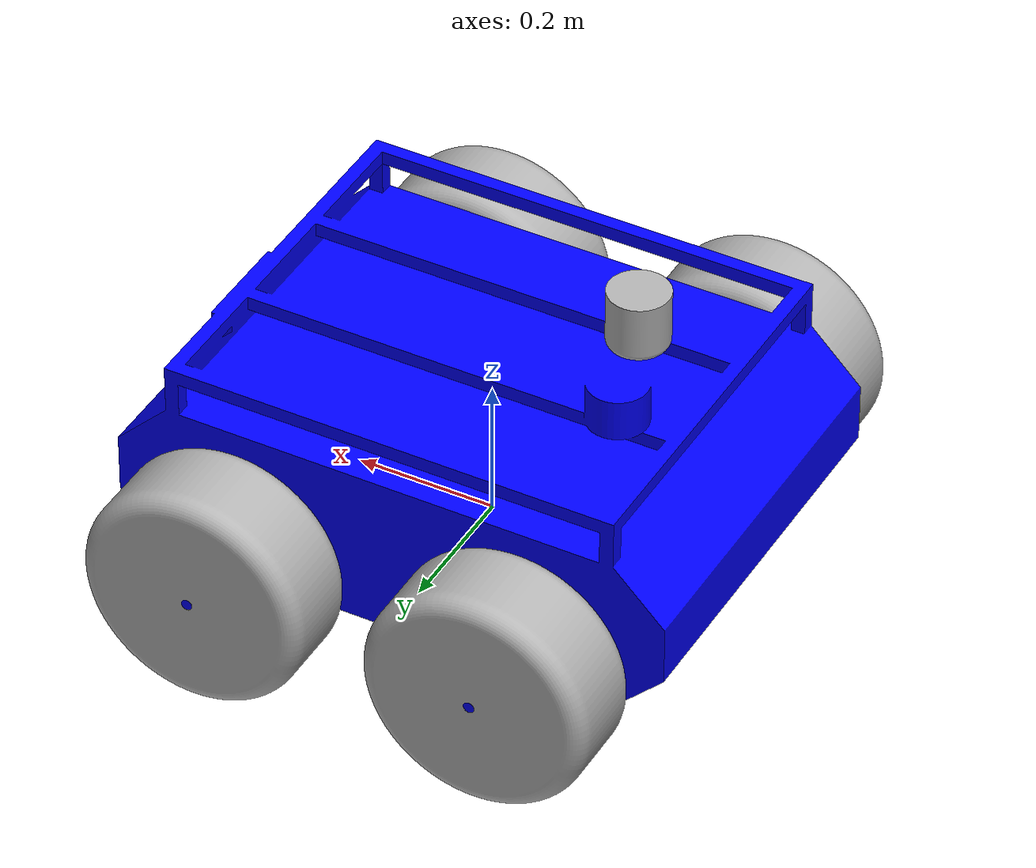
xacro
<?xml version="1.0" ?>
<robot name="minimal_robot" xmlns:xacro="http://www.ros.org/wiki/xacro">

<xacro:include filename="$(find rebob_sim_description)/urdf/materials.xacro" />
<xacro:include filename="$(find rebob_sim_description)/urdf/velodyne.xacro" />
<xacro:include filename="$(find rebob_sim_description)/urdf/imu.xacro" />
<xacro:include filename="$(find rebob_sim_description)/urdf/cameras.xacro" />
<xacro:include filename="$(find rebob_sim_description)/urdf/ros2_control.xacro" />
<!-- file://$(find rebob_sim_description)/ -->
<!-- package://rebob_sim_description -->

  <link name="base_link">
    <inertial>
      <origin xyz="0.014434200548700926 -3.118137948073763e-16 0.05508555808717281" rpy="0 0 0"/>
      <mass value="234.46307804463302"/>
      <inertia ixx="8.910108" iyy="21.103199" izz="26.731133" ixy="-0.0" iyz="-0.0" ixz="-0.581566"/>
    </inertial>
    <visual>
      <origin xyz="0 0 0" rpy="0 0 0"/>
      <geometry>
        <mesh filename="file://$(find rebob_sim_description)/meshes/base_link.stl" scale="0.001 0.001 0.001"/>
      </geometry>
      <material name="blue"/>
    </visual>
    <collision>
      <origin xyz="0 0 0" rpy="0 0 0"/>
      <geometry>
        <mesh filename="file://$(find rebob_sim_description)/meshes/base_link.stl" scale="0.001 0.001 0.001"/>
      </geometry>
    </collision>
  </link>

<link name="wheel_rr">
  <inertial>
    <origin xyz="0.069 5.000000019295125e-07 1.3877787807814457e-17" rpy="0 0 1.57"/>
    <mass value="88.4730552536459"/>
    <inertia ixx="1.158616" iyy="0.714609" izz="0.714609" ixy="0.0" iyz="0.0" ixz="-0.0"/>
  </inertial>
  <visual>
    <origin xyz="0 0 0" rpy="0 0 -1.57"/>
    <geometry>
      <mesh filename="file://$(find rebob_sim_description)/meshes/wheel.stl" scale="0.001 0.001 0.001"/>
    </geometry>
    <material name="silver"/>
  </visual>
  <collision>
    <origin xyz="-0.06 0 0" rpy="0 1.57 0"/>
    <geometry>
      <cylinder length="0.12" radius="0.163"/>
    </geometry>
  </collision>
</link>

<link name="wheel_fr">
  <inertial>
    <origin xyz="0.06900000000000006 5.000000017629791e-07 4.163336342344337e-17" rpy="0 0 1.57"/>
    <mass value="88.47305525364591"/>
    <inertia ixx="1.158616" iyy="0.714609" izz="0.714609" ixy="-0.0" iyz="-0.0" ixz="0.0"/>
  </inertial>
  <visual>
    <origin xyz="0 0 0" rpy="0 0 -1.57"/>
    <geometry>
      <mesh filename="file://$(find rebob_sim_description)/meshes/wheel.stl" scale="0.001 0.001 0.001"/>
    </geometry>
    <material name="silver"/>
  </visual>
  <collision>
    <origin xyz="-0.06 0 0" rpy="0 1.57 0"/>
    <geometry>
      <cylinder length="0.12" radius="0.163"/>
    </geometry>
  </collision>
</link>

<link name="wheel_rl">
  <inertial>
    <origin xyz="-0.0689999999999999 4.999999977106651e-07 -5.551115123125783e-17" rpy="0 0 1.57"/>
    <mass value="88.47305525364591"/>
    <inertia ixx="1.158616" iyy="0.714609" izz="0.714609" ixy="0.0" iyz="0.0" ixz="-0.0"/>
  </inertial>
  <visual>
    <origin xyz="0 0 0" rpy="0 0 1.57"/>
    <geometry>
      <mesh filename="file://$(find rebob_sim_description)/meshes/wheel.stl" scale="0.001 0.001 0.001"/>
    </geometry>
    <material name="silver"/>
  </visual>
  <collision>
   <origin xyz="-0.06 0 0" rpy="0 1.57 0"/>
    <geometry>
      <cylinder length="0.12" radius="0.163"/>
    </geometry>
  </collision>
</link>

<link name="wheel_fl">
  <inertial>
    <origin xyz="-0.0689999999999999 4.999999975996428e-07 9.71445146547012e-17" rpy="0 0 1.57"/>
    <mass value="88.47305525364588"/>
    <inertia ixx="1.158616" iyy="0.714609" izz="0.714609" ixy="-0.0" iyz="-0.0" ixz="0.0"/>
  </inertial>
  <visual>
    <origin xyz="0 0 0" rpy="0 0 1.57"/>
    <geometry>
      <mesh filename="file://$(find rebob_sim_description)/meshes/wheel.stl" scale="0.001 0.001 0.001"/>
    </geometry>
    <material name="silver"/>
  </visual>
  <collision>
    <origin xyz="-0.06 0 0" rpy="0 1.57 0"/>
    <geometry>
      <cylinder length="0.12" radius="0.163"/>
    </geometry>
  </collision>
</link>

<link name="velodyne">
  <inertial>
    <origin xyz="4.163336342344337e-17 4.999999999588667e-07 0.042556105337969774" rpy="0 0 0"/>
    <mass value="3.734417588986906"/>
    <inertia ixx="0.003845" iyy="0.003845" izz="0.003365" ixy="0.0" iyz="0.0" ixz="0.0"/>
  </inertial>
  <visual>
    <origin xyz="0 0 0" rpy="0 0 0"/>
    <geometry>
      <mesh filename="file://$(find rebob_sim_description)/meshes/velodyne.stl" scale="0.001 0.001 0.001"/>
    </geometry>
    <material name="silver"/>
  </visual>
  <collision>
    <origin xyz="0 0 0" rpy="0 0 0"/>
    <geometry>
      <mesh filename="file://$(find rebob_sim_description)/meshes/velodyne.stl" scale="0.001 0.001 0.001"/>
    </geometry>
  </collision>
</link>

<joint name="wheel_rr_joint" type="continuous">
  <origin xyz="-0.20582 -0.440018 0.072471" rpy="0 0 -1.57"/>
  <parent link="base_link"/>
  <child link="wheel_rr"/>
  <axis xyz="-1.0 0.0 0.0"/>
</joint>

<joint name="wheel_fr_joint" type="continuous">
  <origin xyz="0.209915 -0.440018 0.072471" rpy="0 0 -1.57"/>
  <parent link="base_link"/>
  <child link="wheel_fr"/>
  <axis xyz="-1.0 0.0 0.0"/>
</joint>

<joint name="wheel_rl_joint" type="continuous">
  <origin xyz="-0.20582 0.439276 0.072471" rpy="0 0 -1.57"/>
  <parent link="base_link"/>
  <child link="wheel_rl"/>
  <axis xyz="-1.0 0.0 0.0"/>
</joint>

<joint name="wheel_fl_joint" type="continuous">
  <origin xyz="0.209915 0.439276 0.072471" rpy="0 0 -1.57"/>
  <parent link="base_link"/>
  <child link="wheel_fl"/>
  <axis xyz="-1.0 0.0 0.0"/>
</joint>

<joint name="velodyne_joint" type="fixed">
    <origin xyz="-0.26 0.09 0.442" rpy="0 0 1.57"/>
    <parent link="base_link"/>
    <child link="velodyne"/>
    <axis xyz="0.0 0.0 1.0"/>
</joint>

<!-- continuous -->
</robot>

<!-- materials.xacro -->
<robot name="minimal_robot" xmlns:xacro="http://www.ros.org/wiki/xacro" >

<material name="silver">
  <color rgba="0.700 0.700 0.700 1.000"/>
</material>

<material name="blue">
    <color rgba="0.000 0.000 1.000 1.000"/>
</material>

</robot>

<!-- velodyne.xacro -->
<robot xmlns:xacro="http://www.ros.org/wiki/xacro" >

    <joint name="laser_joint" type="fixed">
        <parent link="velodyne"/>
        <child link="laser_frame"/>
        <origin xyz="0 0 0" rpy="0 0 0"/>
    </joint>

    <link name="laser_frame"/>

    <gazebo reference="laser_frame">
        <material>Gazebo/Black</material>

        <sensor name="laser" type="gpu_lidar">
            <pose> 0 0 0 0 0 0 </pose>
            <visualize>false</visualize>
            <update_rate>10</update_rate>
            <lidar>
                <scan>
                    <horizontal>
                        <samples>360</samples>
                        <min_angle>-3.14</min_angle>
                        <max_angle>3.14</max_angle>
                    </horizontal>
                    <vertical>
                        <samples>32</samples>
                        <resolution>1</resolution>
                        <min_angle>-0.54</min_angle>
                        <max_angle>0.18</max_angle>
                    </vertical>
                </scan>
                <range>
                    <min>0.3</min>
                    <max>100.0</max>
                </range>
                <!-- noise breaks shit up -->
            </lidar>
            <topic>velodyne_scan</topic>
            <gz_frame_id>laser_frame</gz_frame_id>
            <visualize>true</visualize>
        </sensor>
    </gazebo>

</robot>

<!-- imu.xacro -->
<robot xmlns:xacro="http://www.ros.org/wiki/xacro" >

    <joint name="imu_joint" type="fixed">
        <parent link="base_link"/>
        <child link="imu_link"/>
        <origin xyz="-0.18 0.1115 0.352" rpy="0 0 3.1415"/>
    </joint>

    <link name="imu_link"/>

    <gazebo reference="imu_link">
        <material>Gazebo/Black</material>

        <sensor name="imu" type="imu">
            <always_on>1</always_on>
            <update_rate>20</update_rate>
            <visualize>true</visualize>
            <topic>imu</topic>
        </sensor>
    </gazebo>

</robot>

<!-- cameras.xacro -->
<robot xmlns:xacro="http://www.ros.org/wiki/xacro" >

    <joint name="front_03r_joint" type="fixed">
        <origin xyz="0.34 0.00 0.3" rpy="1.57 3.14 1.57"/>
        <parent link="base_link"/>
        <child link="front_camera_frame"/>
    </joint>

    <link name="front_camera_frame"/>

    <gazebo reference="front_camera_frame">
        <material>Gazebo/Black</material>

        <sensor name="camera_front" type="camera">
            <pose> 0 0 0 1.57 -1.57 0 </pose>
            <visualize>false</visualize>
            <camera>
                <camera_info_topic>camera_front/camera_info</camera_info_topic>
                <horizontal_fov>1.089</horizontal_fov>
                <image>
                    <format>R8G8B8</format>
                    <width>640</width>
                    <height>480</height>
                </image>
                <clip>
                    <near>0.05</near>
                    <far>30.0</far>
                </clip>
                <depth_camera>
                    <output>camera_front/points</output>
                </depth_camera>
            </camera>
            <topic>camera_front/image_raw</topic>
            <gz_frame_id>front_camera_frame</gz_frame_id>
            <update_rate>30</update_rate>
        </sensor>
    </gazebo>

    <joint name="rear_03r_joint" type="fixed">
        <origin xyz="-0.34 0.0 0.3" rpy="1.57 3.14 -1.57"/>
        <parent link="base_link"/>
        <child link="rear_camera_frame"/>
    </joint>

    <link name="rear_camera_frame"/>

    <gazebo reference="rear_camera_frame">
        <material>Gazebo/Black</material>

        <sensor name="camera_rear" type="camera">
            <pose> 0 0 0 1.57 -1.57 0 </pose>
            <visualize>false</visualize>
            <camera>
                <camera_info_topic>camera_rear/camera_info</camera_info_topic>
                <horizontal_fov>1.089</horizontal_fov>
                <image>
                    <format>R8G8B8</format>
                    <width>640</width>
                    <height>480</height>
                </image>
                <clip>
                    <near>0.05</near>
                    <far>30.0</far>
                </clip>
            </camera>
            <topic>camera_rear/image_raw</topic>
            <gz_frame_id>rear_camera_frame</gz_frame_id>
            <update_rate>30</update_rate>
        </sensor>
    </gazebo>

    <!-- test 3d -->
    <joint name="front_3d_joint" type="fixed">
        <origin xyz="0.34 0.03 0.3" rpy="0 0 0"/>
        <parent link="base_link"/>
        <child link="front_depth_frame"/>
    </joint>

    <link name="front_depth_frame"/>

    <gazebo reference="front_depth_frame">
        <material>Gazebo/Black</material>

        <sensor name="depth_front" type="depth_camera">
            <always_on>1</always_on>
            <update_rate>20</update_rate>
            <visualize>0</visualize>
            <topic>depth_front</topic>
            <pose>0 0 0 0 0 0</pose>
            <camera name="depth">
                <horizontal_fov>1.83</horizontal_fov>
                <vertical_fov>1.36</vertical_fov>
                <image>
                    <width>224</width>
                    <height>172</height>
                    <format>RGB_INT8</format>
                </image>
                <clip>
                    <near>0.1</near>
                    <far>4</far>
                </clip>
                <noise>
                    <type>gaussian</type>
                    <mean>0</mean>
                    <stddev>0.001</stddev>
                </noise>
            </camera>
            <gz_frame_id>front_depth_frame</gz_frame_id>
        </sensor>
    </gazebo>

    <joint name="rear_3d_joint" type="fixed">
        <origin xyz="-0.34 -0.03 0.3" rpy="0 0 -3.14"/>
        <parent link="base_link"/>
        <child link="rear_depth_frame"/>
    </joint>

    <link name="rear_depth_frame"/>

    <gazebo reference="rear_depth_frame">
        <material>Gazebo/Black</material>

        <sensor name="depth_rear" type="depth_camera">
            <always_on>1</always_on>
            <update_rate>20</update_rate>
            <visualize>0</visualize>
            <topic>depth_rear</topic>
            <pose>0 0 0 0 0 0</pose>
            <camera name="depth">
                <horizontal_fov>1.83</horizontal_fov>
                <vertical_fov>1.36</vertical_fov>
                <image>
                    <width>224</width>
                    <height>172</height>
                    <format>RGB_INT8</format>
                </image>
                <clip>
                    <near>0.1</near>
                    <far>4</far>
                </clip>
                <noise>
                    <type>gaussian</type>
                    <mean>0</mean>
                    <stddev>0.001</stddev>
                </noise>
            </camera>
            <gz_frame_id>rear_depth_frame</gz_frame_id>
        </sensor>
    </gazebo>
</robot>
